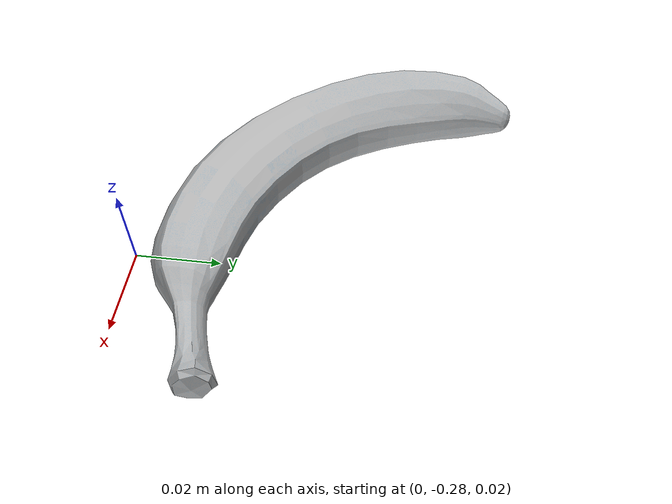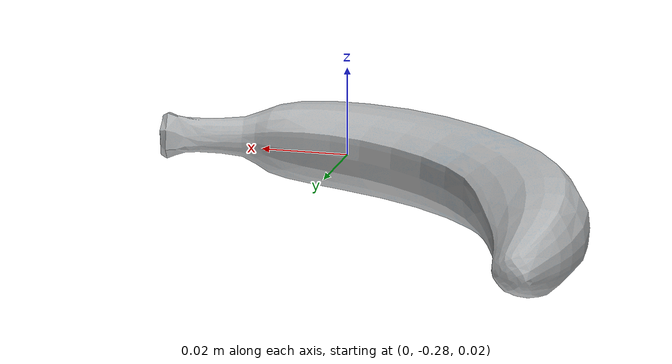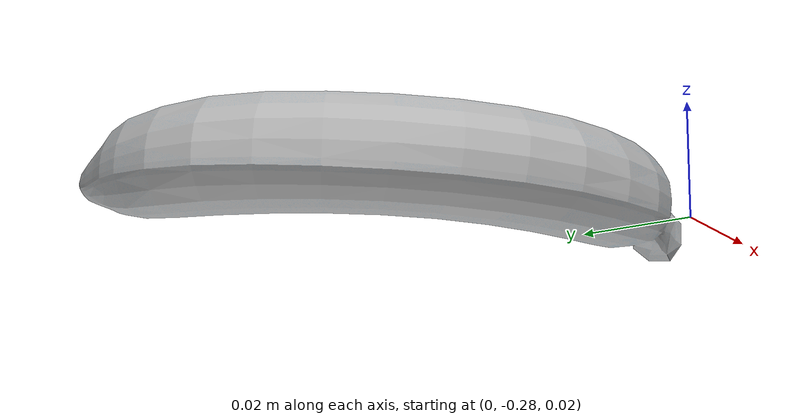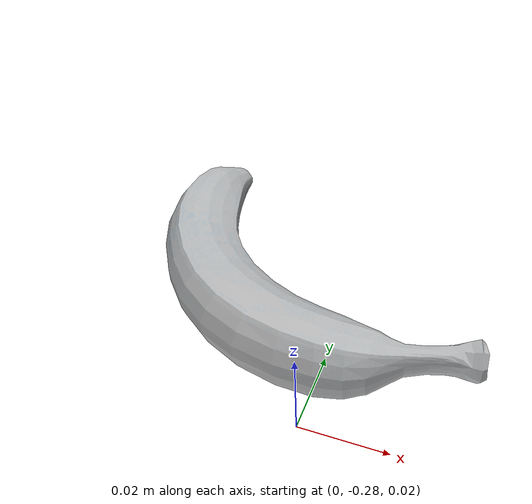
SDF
<?xml version="1.0" ?>
<sdf version='1.4'>
  <model name="banana07">
      <static>0</static>
      <link name='link'>
        <inertial>
          <mass>1.0</mass>
          <inertia>
            <ixx>0.000041667</ixx>
            <ixy>0.000000</ixy>
            <ixz>0.000000</ixz>
            <iyy>0.000041667</iyy>
            <iyz>0.000000</iyz>
            <izz>0.000041667</izz>
          </inertia>
        </inertial>
        <visual name='visual'>
          <geometry>
          <mesh>
            <uri>model://banana07/meshes/banana07.dae</uri>
	    <scale> 1.2 1.2 1.2</scale>
          </mesh>
          </geometry>
        </visual>
        <collision name='collision'>
          <geometry>
            <box>
              <size>0.02 0.02 0.02</size>
            </box>
          </geometry>
          <surface>
            <friction>
              <ode>
                <mu>0.5</mu>
                <mu2>0.5</mu2>
              </ode>
            </friction>
            <contact>
              <ode>
                <kp>1000000.0</kp>
                <kd>1.0</kd>
                <max_vel>1.0</max_vel>
                <min_depth>0.0025</min_depth>
              </ode>
            </contact>
          </surface>
        </collision>
        <velocity_decay>
          <linear>0.000000</linear>
          <angular>0.000000</angular>
        </velocity_decay>
        <self_collide>0</self_collide>
        <kinematic>0</kinematic>
        <gravity>1</gravity>
      </link>
  </model>
</sdf>
